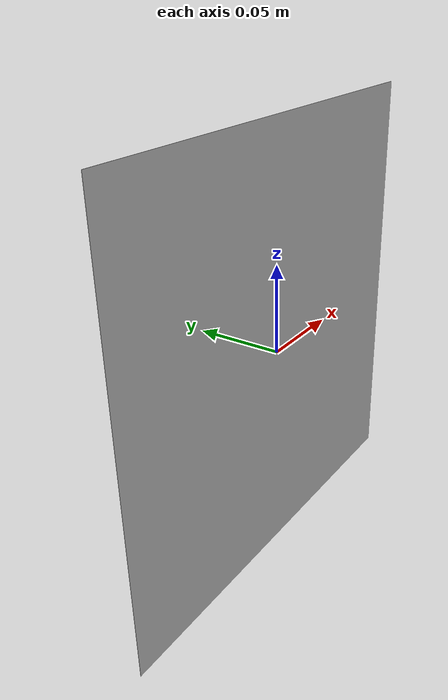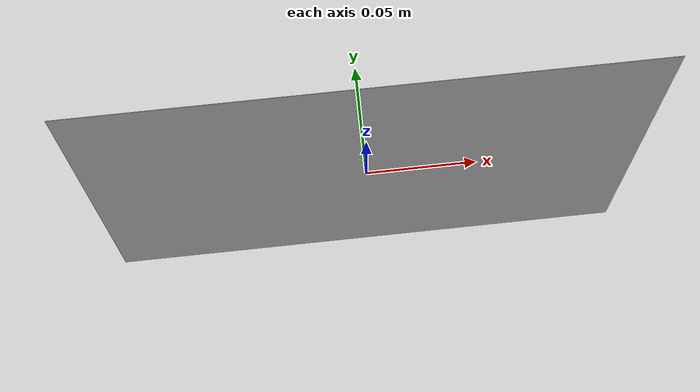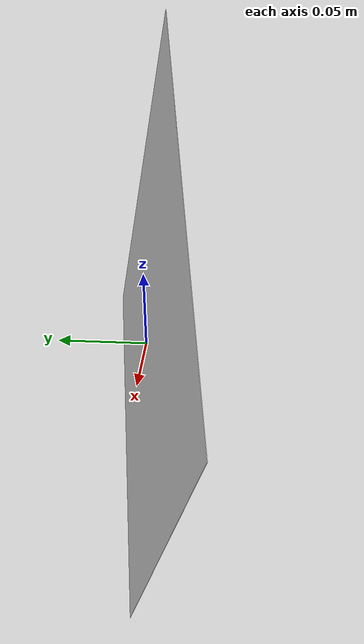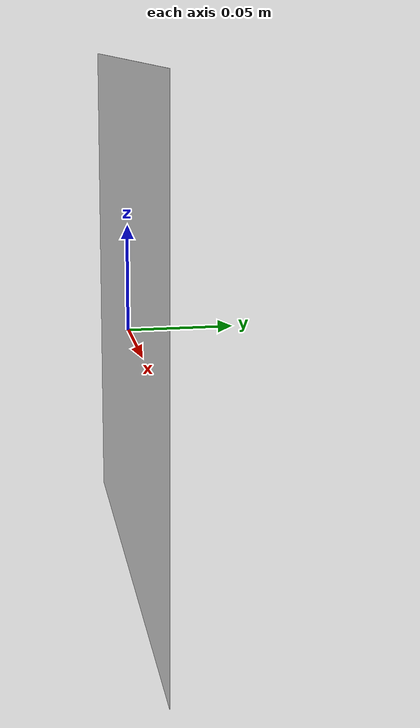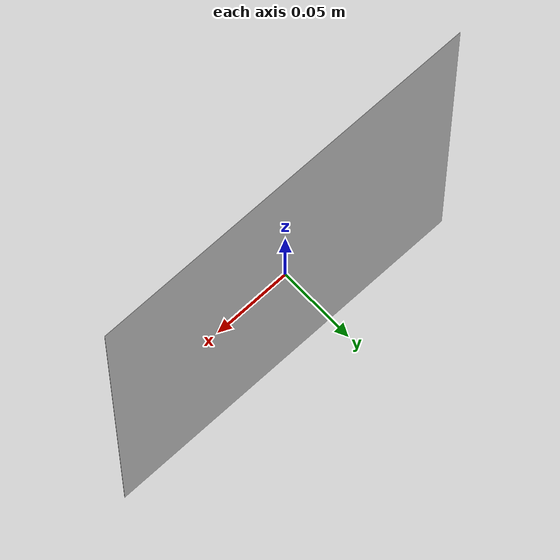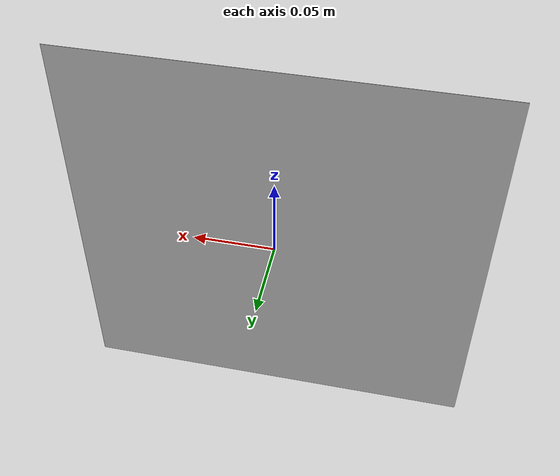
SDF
<?xml version="1.0" ?>
<sdf version="1.0">
  <model name="aruco_tag_4">
    <static>true</static>
    <link name="link">
      <visual name="visual">
        <cast_shadows>false</cast_shadows>
        <geometry>
          <plane>
            <normal>0 1 0</normal>
            <size>.25 .25</size>
          </plane>
        </geometry>
        <material>
          <script>
                <uri>model://urdf/models/aruco_tag_4/materials/scripts</uri>
                <uri>model://urdf/models/aruco_tag_4/materials/textures</uri>
                <name>aruco/tag4
</name>
          </script>
        </material>
      </visual>
    </link>
  </model>
</sdf>
